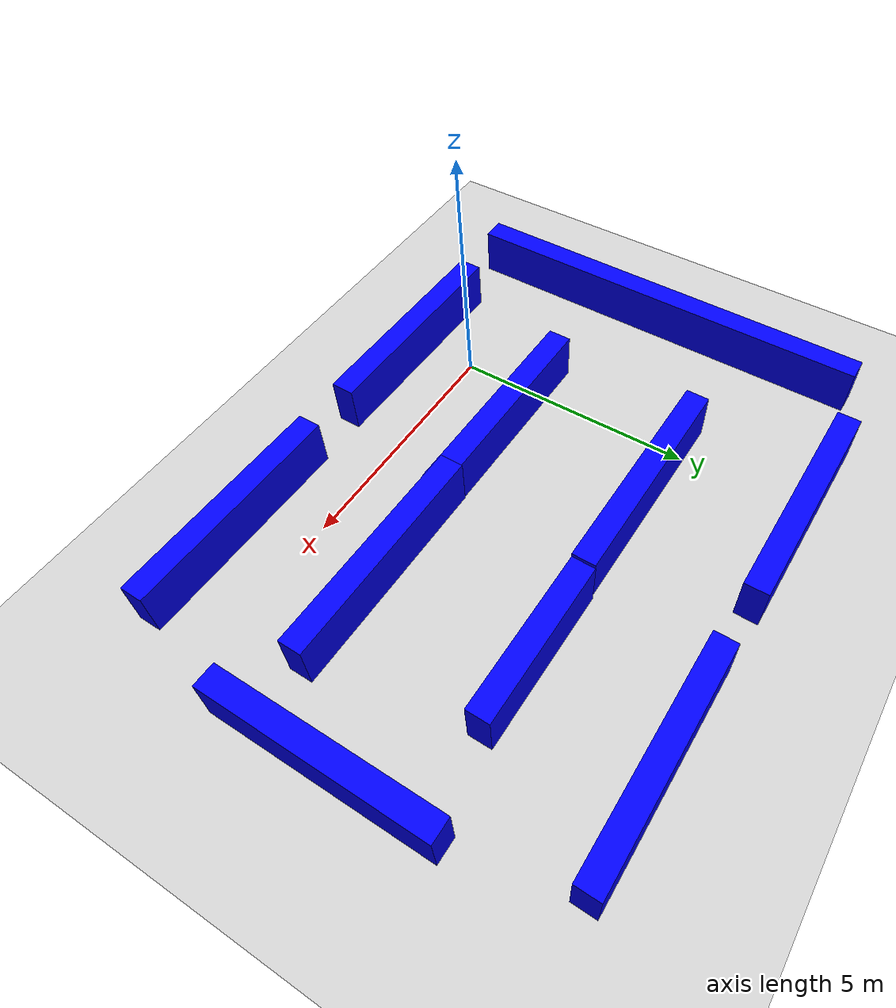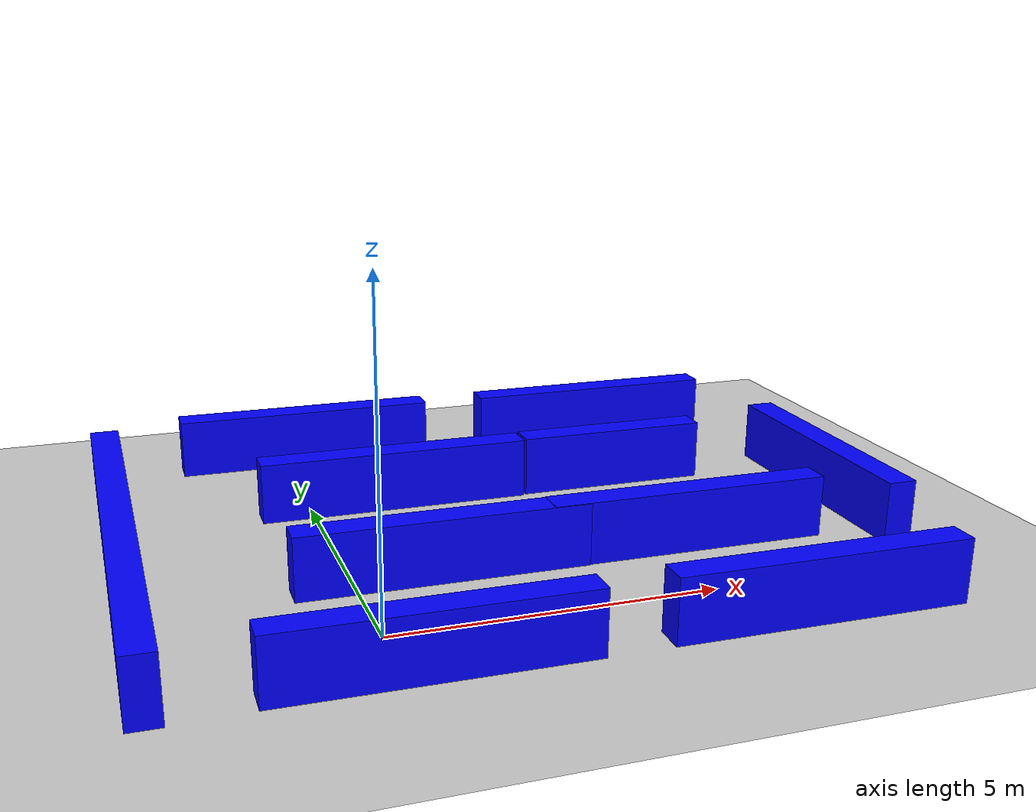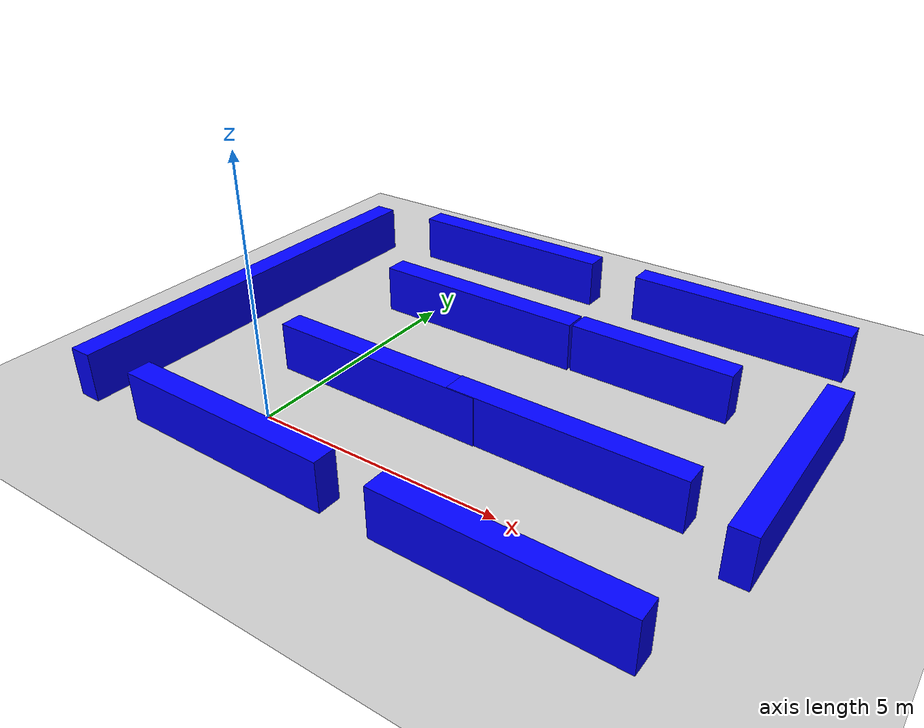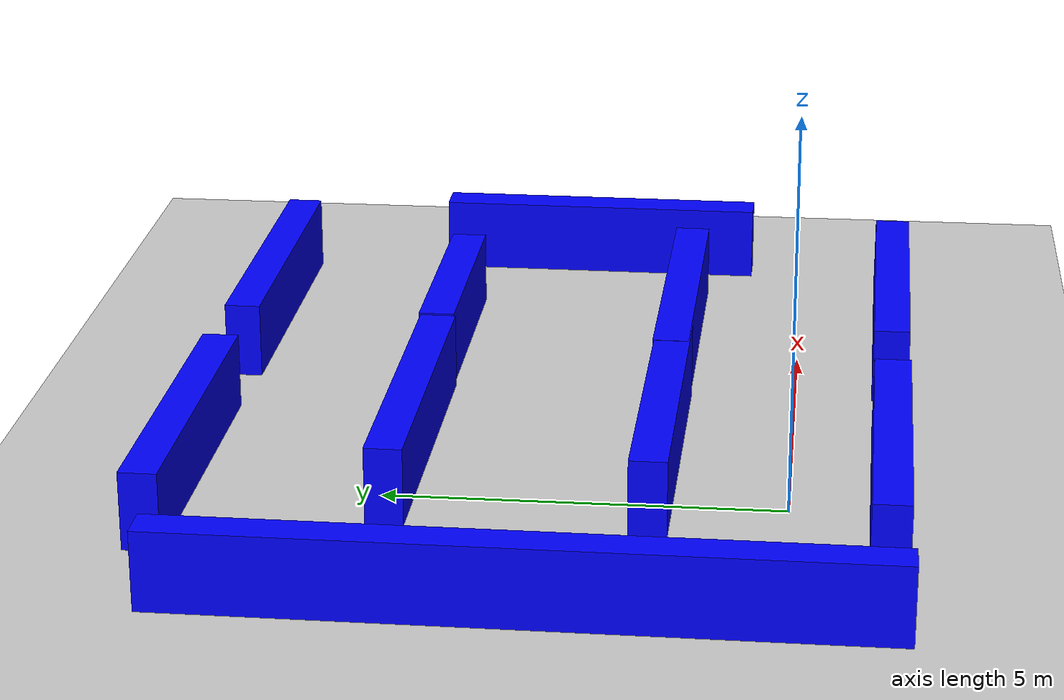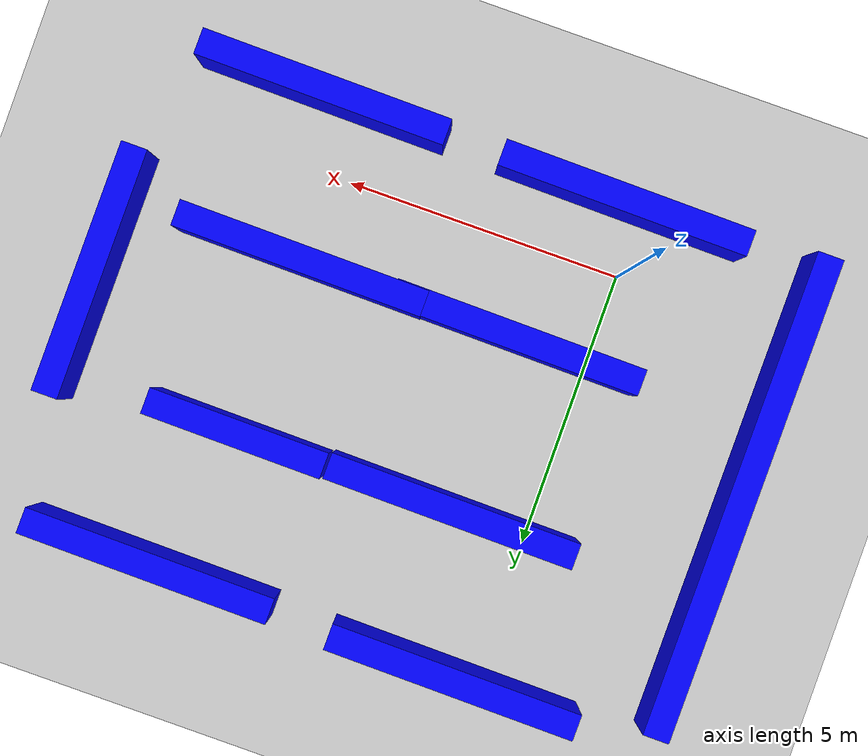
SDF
<sdf version="1.7">
 <world name="default">
  <light name="sun" type="directional">
   <pose>0 0 10 0 -0 0</pose>
   <diffuse>0.8 0.8 0.8 1</diffuse>
   <specular>0.2 0.2 0.2 1</specular>
   <attenuation>
    <range>1000</range>
    <constant>0.9</constant>
    <linear>0.01</linear>
    <quadratic>0.001</quadratic>
   </attenuation>
   <direction>-0.5 0.1 -0.9</direction>
   <spot><inner_angle>0</inner_angle><outer_angle>0</outer_angle><falloff>0</falloff></spot>
  </light>
  <model name="ground_plane">
   <static>1</static>
   <link name="link">
    <collision name="collision">
     <geometry><plane><normal>0 0 1</normal><size>100 100</size></plane></geometry>
     <surface><friction><ode><mu>100</mu><mu2>50</mu2></ode></friction></surface>
    </collision>
    <visual name="visual">
     <cast_shadows>0</cast_shadows>
     <geometry><plane><normal>0 0 1</normal><size>100 100</size></plane></geometry>
     <material>
      <script><uri>file://media/materials/scripts/gazebo.material</uri><name>Gazebo/Grey</name></script>
     </material>
    </visual>
   </link>
  </model>
  <gravity>0 0 -9.8</gravity>
  <magnetic_field>6e-06 2.3e-05 -4.2e-05</magnetic_field>
  <atmosphere type="adiabatic"/>
  <physics type="ode">
   <max_step_size>0.001</max_step_size>
   <real_time_factor>1</real_time_factor>
   <real_time_update_rate>1000</real_time_update_rate>
  </physics>
  <scene><ambient>0.4 0.4 0.4 1</ambient><background>0.7 0.7 0.7 1</background><shadows>1</shadows></scene>
  <spherical_coordinates>
   <surface_model>EARTH_WGS84</surface_model>
   <latitude_deg>0</latitude_deg>
   <longitude_deg>0</longitude_deg>
   <elevation>0</elevation>
   <heading_deg>0</heading_deg>
  </spherical_coordinates>
  <model name="blue_box">
   <link name="link">
    <inertial>
     <mass>1</mass>
     <inertia>
      <ixx>0.166667</ixx>
      <ixy>0</ixy>
      <ixz>0</ixz>
      <iyy>0.166667</iyy>
      <iyz>0</iyz>
      <izz>0.166667</izz>
     </inertia>
    </inertial>
    <visual name="visual">
     <geometry><box><size>4.52605 0.472034 1</size></box></geometry>
     <material>
      <script><name>Gazebo/Grey</name><uri>file://media/materials/scripts/gazebo.material</uri></script>
      <shader type="pixel"><normal_map>__default__</normal_map></shader>
      <ambient>0 0 1 1</ambient>
      <diffuse>0.7 0.7 0.7 1</diffuse>
      <specular>0.01 0.01 0.01 1</specular>
      <emissive>0 0 0 1</emissive>
     </material>
    </visual>
    <collision name="collision">
     <geometry><box><size>4.52605 0.472034 1</size></box></geometry>
     <surface>
      <friction>
       <ode><mu>1</mu><mu2>1</mu2><fdir1>0 0 0</fdir1><slip1>0</slip1><slip2>0</slip2></ode>
       <torsional>
        <coefficient>1</coefficient>
        <patch_radius>0</patch_radius>
        <surface_radius>0</surface_radius>
        <use_patch_radius>1</use_patch_radius>
        <ode><slip>0</slip></ode>
       </torsional>
      </friction>
      <bounce><restitution_coefficient>0</restitution_coefficient><threshold>1e+06</threshold></bounce>
      <contact>
       <collide_without_contact>0</collide_without_contact>
       <collide_without_contact_bitmask>1</collide_without_contact_bitmask>
       <collide_bitmask>1</collide_bitmask>
       <ode>
        <soft_cfm>0</soft_cfm>
        <soft_erp>0.2</soft_erp>
        <kp>1e+13</kp>
        <kd>1</kd>
        <max_vel>0.01</max_vel>
        <min_depth>0</min_depth>
       </ode>
       <bullet>
        <split_impulse>1</split_impulse>
        <split_impulse_penetration_threshold>-0.01</split_impulse_penetration_threshold>
        <soft_cfm>0</soft_cfm>
        <soft_erp>0.2</soft_erp>
        <kp>1e+13</kp>
        <kd>1</kd>
       </bullet>
      </contact>
     </surface>
    </collision>
   </link>
   <static>0</static>
   <pose>0.378099 -1.21948 0.499217 -7e-06 0.000591 -0.011521</pose>
  </model>
  <model name="blue_box_clone">
   <link name="link">
    <inertial>
     <mass>1</mass>
     <inertia>
      <ixx>0.166667</ixx>
      <ixy>0</ixy>
      <ixz>0</ixz>
      <iyy>0.166667</iyy>
      <iyz>0</iyz>
      <izz>0.166667</izz>
     </inertia>
    </inertial>
    <visual name="visual">
     <geometry><box><size>4.52605 0.472034 1</size></box></geometry>
     <material>
      <script><name>Gazebo/Grey</name><uri>file://media/materials/scripts/gazebo.material</uri></script>
      <shader type="pixel"><normal_map>__default__</normal_map></shader>
      <ambient>0 0 1 1</ambient>
      <diffuse>0.7 0.7 0.7 1</diffuse>
      <specular>0.01 0.01 0.01 1</specular>
      <emissive>0 0 0 1</emissive>
     </material>
    </visual>
    <collision name="collision">
     <geometry><box><size>4.52605 0.472034 1</size></box></geometry>
     <surface>
      <friction>
       <ode><mu>1</mu><mu2>1</mu2><fdir1>0 0 0</fdir1><slip1>0</slip1><slip2>0</slip2></ode>
       <torsional>
        <coefficient>1</coefficient>
        <patch_radius>0</patch_radius>
        <surface_radius>0</surface_radius>
        <use_patch_radius>1</use_patch_radius>
        <ode><slip>0</slip></ode>
       </torsional>
      </friction>
      <bounce><restitution_coefficient>0</restitution_coefficient><threshold>1e+06</threshold></bounce>
      <contact>
       <collide_without_contact>0</collide_without_contact>
       <collide_without_contact_bitmask>1</collide_without_contact_bitmask>
       <collide_bitmask>1</collide_bitmask>
       <ode>
        <soft_cfm>0</soft_cfm>
        <soft_erp>0.2</soft_erp>
        <kp>1e+13</kp>
        <kd>1</kd>
        <max_vel>0.01</max_vel>
        <min_depth>0</min_depth>
       </ode>
       <bullet>
        <split_impulse>1</split_impulse>
        <split_impulse_penetration_threshold>-0.01</split_impulse_penetration_threshold>
        <soft_cfm>0</soft_cfm>
        <soft_erp>0.2</soft_erp>
        <kp>1e+13</kp>
        <kd>1</kd>
       </bullet>
      </contact>
     </surface>
    </collision>
   </link>
   <static>0</static>
   <pose>5.89636 -1.27458 0.498666 -7e-06 0.000591 -0.011521</pose>
  </model>
  <model name="blue_box_clone_0">
   <link name="link">
    <inertial>
     <mass>1</mass>
     <inertia>
      <ixx>0.166667</ixx>
      <ixy>0</ixy>
      <ixz>0</ixz>
      <iyy>0.166667</iyy>
      <iyz>0</iyz>
      <izz>0.166667</izz>
     </inertia>
    </inertial>
    <visual name="visual">
     <geometry><box><size>4.52606 0.472034 1</size></box></geometry>
     <material>
      <script><name>Gazebo/Grey</name><uri>file://media/materials/scripts/gazebo.material</uri></script>
      <shader type="pixel"><normal_map>__default__</normal_map></shader>
      <ambient>0 0 1 1</ambient>
      <diffuse>0.7 0.7 0.7 1</diffuse>
      <specular>0.01 0.01 0.01 1</specular>
      <emissive>0 0 0 1</emissive>
     </material>
    </visual>
    <collision name="collision">
     <geometry><box><size>4.52606 0.472034 1</size></box></geometry>
     <surface>
      <friction>
       <ode><mu>1</mu><mu2>1</mu2><fdir1>0 0 0</fdir1><slip1>0</slip1><slip2>0</slip2></ode>
       <torsional>
        <coefficient>1</coefficient>
        <patch_radius>0</patch_radius>
        <surface_radius>0</surface_radius>
        <use_patch_radius>1</use_patch_radius>
        <ode><slip>0</slip></ode>
       </torsional>
      </friction>
      <bounce><restitution_coefficient>0</restitution_coefficient><threshold>1e+06</threshold></bounce>
      <contact>
       <collide_without_contact>0</collide_without_contact>
       <collide_without_contact_bitmask>1</collide_without_contact_bitmask>
       <collide_bitmask>1</collide_bitmask>
       <ode>
        <soft_cfm>0</soft_cfm>
        <soft_erp>0.2</soft_erp>
        <kp>1e+13</kp>
        <kd>1</kd>
        <max_vel>0.01</max_vel>
        <min_depth>0</min_depth>
       </ode>
       <bullet>
        <split_impulse>1</split_impulse>
        <split_impulse_penetration_threshold>-0.01</split_impulse_penetration_threshold>
        <soft_cfm>0</soft_cfm>
        <soft_erp>0.2</soft_erp>
        <kp>1e+13</kp>
        <kd>1</kd>
       </bullet>
      </contact>
     </surface>
    </collision>
   </link>
   <static>0</static>
   <pose>8.60812 3.00777 0.496715 -0.000591 -4e-06 -1.57802</pose>
  </model>
  <model name="blue_box_clone_1">
   <link name="link">
    <inertial>
     <mass>1</mass>
     <inertia>
      <ixx>0.166667</ixx>
      <ixy>0</ixy>
      <ixz>0</ixz>
      <iyy>0.166667</iyy>
      <iyz>0</iyz>
      <izz>0.166667</izz>
     </inertia>
    </inertial>
    <visual name="visual">
     <geometry><box><size>4.52605 0.472034 1</size></box></geometry>
     <material>
      <script><name>Gazebo/Grey</name><uri>file://media/materials/scripts/gazebo.material</uri></script>
      <shader type="pixel"><normal_map>__default__</normal_map></shader>
      <ambient>0 0 1 1</ambient>
      <diffuse>0.7 0.7 0.7 1</diffuse>
      <specular>0.01 0.01 0.01 1</specular>
      <emissive>0 0 0 1</emissive>
     </material>
    </visual>
    <collision name="collision">
     <geometry><box><size>4.52605 0.472034 1</size></box></geometry>
     <surface>
      <friction>
       <ode><mu>1</mu><mu2>1</mu2><fdir1>0 0 0</fdir1><slip1>0</slip1><slip2>0</slip2></ode>
       <torsional>
        <coefficient>1</coefficient>
        <patch_radius>0</patch_radius>
        <surface_radius>0</surface_radius>
        <use_patch_radius>1</use_patch_radius>
        <ode><slip>0</slip></ode>
       </torsional>
      </friction>
      <bounce><restitution_coefficient>0</restitution_coefficient><threshold>1e+06</threshold></bounce>
      <contact>
       <collide_without_contact>0</collide_without_contact>
       <collide_without_contact_bitmask>1</collide_without_contact_bitmask>
       <collide_bitmask>1</collide_bitmask>
       <ode>
        <soft_cfm>0</soft_cfm>
        <soft_erp>0.2</soft_erp>
        <kp>1e+13</kp>
        <kd>1</kd>
        <max_vel>0.01</max_vel>
        <min_depth>0</min_depth>
       </ode>
       <bullet>
        <split_impulse>1</split_impulse>
        <split_impulse_penetration_threshold>-0.01</split_impulse_penetration_threshold>
        <soft_cfm>0</soft_cfm>
        <soft_erp>0.2</soft_erp>
        <kp>1e+13</kp>
        <kd>1</kd>
       </bullet>
      </contact>
     </surface>
    </collision>
   </link>
   <static>0</static>
   <pose>1.33441 1.64316 0.498668 -7e-06 0.000591 -0.011521</pose>
  </model>
  <model name="blue_box_clone_2">
   <link name="link">
    <inertial>
     <mass>1</mass>
     <inertia>
      <ixx>0.166667</ixx>
      <ixy>0</ixy>
      <ixz>0</ixz>
      <iyy>0.166667</iyy>
      <iyz>0</iyz>
      <izz>0.166667</izz>
     </inertia>
    </inertial>
    <visual name="visual">
     <geometry><box><size>4.52604 0.472034 1</size></box></geometry>
     <material>
      <script><name>Gazebo/Grey</name><uri>file://media/materials/scripts/gazebo.material</uri></script>
      <shader type="pixel"><normal_map>__default__</normal_map></shader>
      <ambient>0 0 1 1</ambient>
      <diffuse>0.7 0.7 0.7 1</diffuse>
      <specular>0.01 0.01 0.01 1</specular>
      <emissive>0 0 0 1</emissive>
     </material>
    </visual>
    <collision name="collision">
     <geometry><box><size>4.52604 0.472034 1</size></box></geometry>
     <surface>
      <friction>
       <ode><mu>1</mu><mu2>1</mu2><fdir1>0 0 0</fdir1><slip1>0</slip1><slip2>0</slip2></ode>
       <torsional>
        <coefficient>1</coefficient>
        <patch_radius>0</patch_radius>
        <surface_radius>0</surface_radius>
        <use_patch_radius>1</use_patch_radius>
        <ode><slip>0</slip></ode>
       </torsional>
      </friction>
      <bounce><restitution_coefficient>0</restitution_coefficient><threshold>1e+06</threshold></bounce>
      <contact>
       <collide_without_contact>0</collide_without_contact>
       <collide_without_contact_bitmask>1</collide_without_contact_bitmask>
       <collide_bitmask>1</collide_bitmask>
       <ode>
        <soft_cfm>0</soft_cfm>
        <soft_erp>0.2</soft_erp>
        <kp>1e+13</kp>
        <kd>1</kd>
        <max_vel>0.01</max_vel>
        <min_depth>0</min_depth>
       </ode>
       <bullet>
        <split_impulse>1</split_impulse>
        <split_impulse_penetration_threshold>-0.01</split_impulse_penetration_threshold>
        <soft_cfm>0</soft_cfm>
        <soft_erp>0.2</soft_erp>
        <kp>1e+13</kp>
        <kd>1</kd>
       </bullet>
      </contact>
     </surface>
    </collision>
   </link>
   <static>0</static>
   <pose>5.28754 1.61348 0.49905 -7e-06 0.000591 -0.011521</pose>
  </model>
  <model name="blue_box_clone_1_clone">
   <link name="link">
    <inertial>
     <mass>1</mass>
     <inertia>
      <ixx>0.166667</ixx>
      <ixy>0</ixy>
      <ixz>0</ixz>
      <iyy>0.166667</iyy>
      <iyz>0</iyz>
      <izz>0.166667</izz>
     </inertia>
    </inertial>
    <visual name="visual">
     <geometry><box><size>4.52605 0.472034 1</size></box></geometry>
     <material>
      <script><name>Gazebo/Grey</name><uri>file://media/materials/scripts/gazebo.material</uri></script>
      <shader type="pixel"><normal_map>__default__</normal_map></shader>
      <ambient>0 0 1 1</ambient>
      <diffuse>0.7 0.7 0.7 1</diffuse>
      <specular>0.01 0.01 0.01 1</specular>
      <emissive>0 0 0 1</emissive>
     </material>
    </visual>
    <collision name="collision">
     <geometry><box><size>4.52605 0.472034 1</size></box></geometry>
     <surface>
      <friction>
       <ode><mu>1</mu><mu2>1</mu2><fdir1>0 0 0</fdir1><slip1>0</slip1><slip2>0</slip2></ode>
       <torsional>
        <coefficient>1</coefficient>
        <patch_radius>0</patch_radius>
        <surface_radius>0</surface_radius>
        <use_patch_radius>1</use_patch_radius>
        <ode><slip>0</slip></ode>
       </torsional>
      </friction>
      <bounce><restitution_coefficient>0</restitution_coefficient><threshold>1e+06</threshold></bounce>
      <contact>
       <collide_without_contact>0</collide_without_contact>
       <collide_without_contact_bitmask>1</collide_without_contact_bitmask>
       <collide_bitmask>1</collide_bitmask>
       <ode>
        <soft_cfm>0</soft_cfm>
        <soft_erp>0.2</soft_erp>
        <kp>1e+13</kp>
        <kd>1</kd>
        <max_vel>0.01</max_vel>
        <min_depth>0</min_depth>
       </ode>
       <bullet>
        <split_impulse>1</split_impulse>
        <split_impulse_penetration_threshold>-0.01</split_impulse_penetration_threshold>
        <soft_cfm>0</soft_cfm>
        <soft_erp>0.2</soft_erp>
        <kp>1e+13</kp>
        <kd>1</kd>
       </bullet>
      </contact>
     </surface>
    </collision>
   </link>
   <static>0</static>
   <pose>1.40188 4.81735 0.498668 -7e-06 0.000591 -0.011521</pose>
  </model>
  <model name="blue_box_clone_2_clone">
   <link name="link">
    <inertial>
     <mass>1</mass>
     <inertia>
      <ixx>0.166667</ixx>
      <ixy>0</ixy>
      <ixz>0</ixz>
      <iyy>0.166667</iyy>
      <iyz>0</iyz>
      <izz>0.166667</izz>
     </inertia>
    </inertial>
    <visual name="visual">
     <geometry><box><size>3.24977 0.472034 1</size></box></geometry>
     <material>
      <script><name>Gazebo/Grey</name><uri>file://media/materials/scripts/gazebo.material</uri></script>
      <shader type="pixel"><normal_map>__default__</normal_map></shader>
      <ambient>0 0 1 1</ambient>
      <diffuse>0.7 0.7 0.7 1</diffuse>
      <specular>0.01 0.01 0.01 1</specular>
      <emissive>0 0 0 1</emissive>
     </material>
    </visual>
    <collision name="collision">
     <geometry><box><size>3.24977 0.472034 1</size></box></geometry>
     <surface>
      <friction>
       <ode><mu>1</mu><mu2>1</mu2><fdir1>0 0 0</fdir1><slip1>0</slip1><slip2>0</slip2></ode>
       <torsional>
        <coefficient>1</coefficient>
        <patch_radius>0</patch_radius>
        <surface_radius>0</surface_radius>
        <use_patch_radius>1</use_patch_radius>
        <ode><slip>0</slip></ode>
       </torsional>
      </friction>
      <bounce><restitution_coefficient>0</restitution_coefficient><threshold>1e+06</threshold></bounce>
      <contact>
       <collide_without_contact>0</collide_without_contact>
       <collide_without_contact_bitmask>1</collide_without_contact_bitmask>
       <collide_bitmask>1</collide_bitmask>
       <ode>
        <soft_cfm>0</soft_cfm>
        <soft_erp>0.2</soft_erp>
        <kp>1e+13</kp>
        <kd>1</kd>
        <max_vel>0.01</max_vel>
        <min_depth>0</min_depth>
       </ode>
       <bullet>
        <split_impulse>1</split_impulse>
        <split_impulse_penetration_threshold>-0.01</split_impulse_penetration_threshold>
        <soft_cfm>0</soft_cfm>
        <soft_erp>0.2</soft_erp>
        <kp>1e+13</kp>
        <kd>1</kd>
       </bullet>
      </contact>
     </surface>
    </collision>
   </link>
   <static>0</static>
   <pose>5.33843 4.80169 0.49905 -7e-06 0.000591 -0.011521</pose>
  </model>
  <model name="blue_box_clone_clone">
   <link name="link">
    <inertial>
     <mass>1</mass>
     <inertia>
      <ixx>0.166667</ixx>
      <ixy>0</ixy>
      <ixz>0</ixz>
      <iyy>0.166667</iyy>
      <iyz>0</iyz>
      <izz>0.166667</izz>
     </inertia>
    </inertial>
    <visual name="visual">
     <geometry><box><size>4.52605 0.472034 1</size></box></geometry>
     <material>
      <script><name>Gazebo/Grey</name><uri>file://media/materials/scripts/gazebo.material</uri></script>
      <shader type="pixel"><normal_map>__default__</normal_map></shader>
      <ambient>0 0 1 1</ambient>
      <diffuse>0.7 0.7 0.7 1</diffuse>
      <specular>0.01 0.01 0.01 1</specular>
      <emissive>0 0 0 1</emissive>
     </material>
    </visual>
    <collision name="collision">
     <geometry><box><size>4.52605 0.472034 1</size></box></geometry>
     <surface>
      <friction>
       <ode><mu>1</mu><mu2>1</mu2><fdir1>0 0 0</fdir1><slip1>0</slip1><slip2>0</slip2></ode>
       <torsional>
        <coefficient>1</coefficient>
        <patch_radius>0</patch_radius>
        <surface_radius>0</surface_radius>
        <use_patch_radius>1</use_patch_radius>
        <ode><slip>0</slip></ode>
       </torsional>
      </friction>
      <bounce><restitution_coefficient>0</restitution_coefficient><threshold>1e+06</threshold></bounce>
      <contact>
       <collide_without_contact>0</collide_without_contact>
       <collide_without_contact_bitmask>1</collide_without_contact_bitmask>
       <collide_bitmask>1</collide_bitmask>
       <ode>
        <soft_cfm>0</soft_cfm>
        <soft_erp>0.2</soft_erp>
        <kp>1e+13</kp>
        <kd>1</kd>
        <max_vel>0.01</max_vel>
        <min_depth>0</min_depth>
       </ode>
       <bullet>
        <split_impulse>1</split_impulse>
        <split_impulse_penetration_threshold>-0.01</split_impulse_penetration_threshold>
        <soft_cfm>0</soft_cfm>
        <soft_erp>0.2</soft_erp>
        <kp>1e+13</kp>
        <kd>1</kd>
       </bullet>
      </contact>
     </surface>
    </collision>
   </link>
   <static>0</static>
   <pose>6.0178 7.44164 0.498666 -7e-06 0.000591 -0.011521</pose>
  </model>
  <model name="blue_box_clone_clone_0">
   <link name="link">
    <inertial>
     <mass>1</mass>
     <inertia>
      <ixx>0.166667</ixx>
      <ixy>0</ixy>
      <ixz>0</ixz>
      <iyy>0.166667</iyy>
      <iyz>0</iyz>
      <izz>0.166667</izz>
     </inertia>
    </inertial>
    <visual name="visual">
     <geometry><box><size>4.52604 0.472034 1</size></box></geometry>
     <material>
      <script><name>Gazebo/Grey</name><uri>file://media/materials/scripts/gazebo.material</uri></script>
      <shader type="pixel"><normal_map>__default__</normal_map></shader>
      <ambient>0 0 1 1</ambient>
      <diffuse>0.7 0.7 0.7 1</diffuse>
      <specular>0.01 0.01 0.01 1</specular>
      <emissive>0 0 0 1</emissive>
     </material>
    </visual>
    <collision name="collision">
     <geometry><box><size>4.52604 0.472034 1</size></box></geometry>
     <surface>
      <friction>
       <ode><mu>1</mu><mu2>1</mu2><fdir1>0 0 0</fdir1><slip1>0</slip1><slip2>0</slip2></ode>
       <torsional>
        <coefficient>1</coefficient>
        <patch_radius>0</patch_radius>
        <surface_radius>0</surface_radius>
        <use_patch_radius>1</use_patch_radius>
        <ode><slip>0</slip></ode>
       </torsional>
      </friction>
      <bounce><restitution_coefficient>0</restitution_coefficient><threshold>1e+06</threshold></bounce>
      <contact>
       <collide_without_contact>0</collide_without_contact>
       <collide_without_contact_bitmask>1</collide_without_contact_bitmask>
       <collide_bitmask>1</collide_bitmask>
       <ode>
        <soft_cfm>0</soft_cfm>
        <soft_erp>0.2</soft_erp>
        <kp>1e+13</kp>
        <kd>1</kd>
        <max_vel>0.01</max_vel>
        <min_depth>0</min_depth>
       </ode>
       <bullet>
        <split_impulse>1</split_impulse>
        <split_impulse_penetration_threshold>-0.01</split_impulse_penetration_threshold>
        <soft_cfm>0</soft_cfm>
        <soft_erp>0.2</soft_erp>
        <kp>1e+13</kp>
        <kd>1</kd>
       </bullet>
      </contact>
     </surface>
    </collision>
   </link>
   <static>0</static>
   <pose>0.416118 7.56246 0.499249 -7e-06 0.000591 -0.011521</pose>
  </model>
  <model name="blue_box_clone_0_clone">
   <link name="link">
    <inertial>
     <mass>1</mass>
     <inertia>
      <ixx>0.166667</ixx>
      <ixy>0</ixy>
      <ixz>0</ixz>
      <iyy>0.166667</iyy>
      <iyz>0</iyz>
      <izz>0.166667</izz>
     </inertia>
    </inertial>
    <visual name="visual">
     <geometry><box><size>8.77359 0.472034 1</size></box></geometry>
     <material>
      <script><name>Gazebo/Grey</name><uri>file://media/materials/scripts/gazebo.material</uri></script>
      <shader type="pixel"><normal_map>__default__</normal_map></shader>
      <ambient>0 0 1 1</ambient>
      <diffuse>0.7 0.7 0.7 1</diffuse>
      <specular>0.01 0.01 0.01 1</specular>
      <emissive>0 0 0 1</emissive>
     </material>
    </visual>
    <collision name="collision">
     <geometry><box><size>8.77359 0.472034 1</size></box></geometry>
     <surface>
      <friction>
       <ode><mu>1</mu><mu2>1</mu2><fdir1>0 0 0</fdir1><slip1>0</slip1><slip2>0</slip2></ode>
       <torsional>
        <coefficient>1</coefficient>
        <patch_radius>0</patch_radius>
        <surface_radius>0</surface_radius>
        <use_patch_radius>1</use_patch_radius>
        <ode><slip>0</slip></ode>
       </torsional>
      </friction>
      <bounce><restitution_coefficient>0</restitution_coefficient><threshold>1e+06</threshold></bounce>
      <contact>
       <collide_without_contact>0</collide_without_contact>
       <collide_without_contact_bitmask>1</collide_without_contact_bitmask>
       <collide_bitmask>1</collide_bitmask>
       <ode>
        <soft_cfm>0</soft_cfm>
        <soft_erp>0.2</soft_erp>
        <kp>1e+13</kp>
        <kd>1</kd>
        <max_vel>0.01</max_vel>
        <min_depth>0</min_depth>
       </ode>
       <bullet>
        <split_impulse>1</split_impulse>
        <split_impulse_penetration_threshold>-0.01</split_impulse_penetration_threshold>
        <soft_cfm>0</soft_cfm>
        <soft_erp>0.2</soft_erp>
        <kp>1e+13</kp>
        <kd>1</kd>
       </bullet>
      </contact>
     </surface>
    </collision>
   </link>
   <static>0</static>
   <pose>-3.20594 2.93397 0.496715 -0.000591 -4e-06 -1.57802</pose>
  </model>
  <light name="user_directional_light_0" type="directional">
   <pose>1.49881 -1.85338 1 0 -0 0</pose>
   <diffuse>0.5 0.5 0.5 1</diffuse>
   <specular>0.1 0.1 0.1 1</specular>
   <direction>0.1 0.1 -0.9</direction>
   <attenuation>
    <range>20</range>
    <constant>0.5</constant>
    <linear>0.01</linear>
    <quadratic>0.001</quadratic>
   </attenuation>
  </light>
  <light name="user_directional_light_1" type="directional">
   <pose>3.35615 -2.06266 1 0 -0 0</pose>
   <diffuse>0.5 0.5 0.5 1</diffuse>
   <specular>0.1 0.1 0.1 1</specular>
   <direction>0.1 0.1 -0.9</direction>
   <attenuation>
    <range>20</range>
    <constant>0.5</constant>
    <linear>0.01</linear>
    <quadratic>0.001</quadratic>
   </attenuation>
  </light>
  <light name="user_directional_light_2" type="directional">
   <pose>7.05623 -2.24919 1 0 -0 0</pose>
   <diffuse>0.5 0.5 0.5 1</diffuse>
   <specular>0.1 0.1 0.1 1</specular>
   <direction>0.1 0.1 -0.9</direction>
   <attenuation>
    <range>20</range>
    <constant>0.5</constant>
    <linear>0.01</linear>
    <quadratic>0.001</quadratic>
   </attenuation>
  </light>
  <light name="user_directional_light_3" type="directional">
   <pose>7.49012 8.43381 1 0 -0 0</pose>
   <diffuse>0.5 0.5 0.5 1</diffuse>
   <specular>0.1 0.1 0.1 1</specular>
   <direction>0.1 0.1 -0.9</direction>
   <attenuation>
    <range>20</range>
    <constant>0.5</constant>
    <linear>0.01</linear>
    <quadratic>0.001</quadratic>
   </attenuation>
  </light>
  <light name="user_directional_light_4" type="directional">
   <pose>3.26822 8.64826 1 0 -0 0</pose>
   <diffuse>0.5 0.5 0.5 1</diffuse>
   <specular>0.1 0.1 0.1 1</specular>
   <direction>0.1 0.1 -0.9</direction>
   <attenuation>
    <range>20</range>
    <constant>0.5</constant>
    <linear>0.01</linear>
    <quadratic>0.001</quadratic>
   </attenuation>
  </light>
  <light name="user_directional_light_5" type="directional">
   <pose>-1.82639 8.64376 1 0 -0 0</pose>
   <diffuse>0.5 0.5 0.5 1</diffuse>
   <specular>0.1 0.1 0.1 1</specular>
   <direction>0.1 0.1 -0.9</direction>
   <attenuation>
    <range>20</range>
    <constant>0.5</constant>
    <linear>0.01</linear>
    <quadratic>0.001</quadratic>
   </attenuation>
  </light>
  <light name="user_directional_light_6" type="directional">
   <pose>-4.08097 3.22122 1 0 -0 0</pose>
   <diffuse>0.5 0.5 0.5 1</diffuse>
   <specular>0.1 0.1 0.1 1</specular>
   <direction>0.1 0.1 -0.9</direction>
   <attenuation>
    <range>20</range>
    <constant>0.5</constant>
    <linear>0.01</linear>
    <quadratic>0.001</quadratic>
   </attenuation>
  </light>
  <light name="user_directional_light_7" type="directional">
   <pose>9.76338 2.12326 1 0 -0 0</pose>
   <diffuse>0.5 0.5 0.5 1</diffuse>
   <specular>0.1 0.1 0.1 1</specular>
   <direction>0.1 0.1 -0.9</direction>
   <attenuation>
    <range>20</range>
    <constant>0.5</constant>
    <linear>0.01</linear>
    <quadratic>0.001</quadratic>
   </attenuation>
  </light>
 </world>
</sdf>
